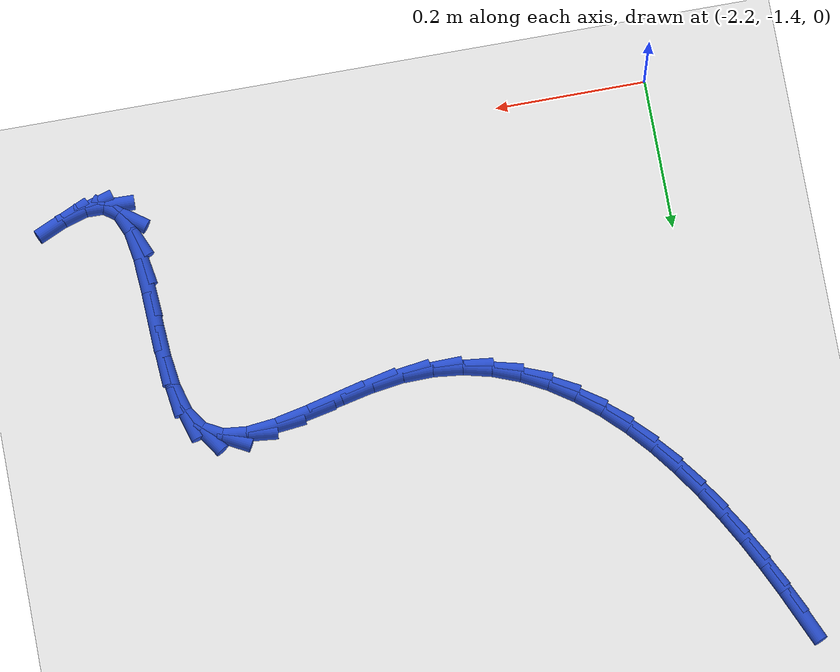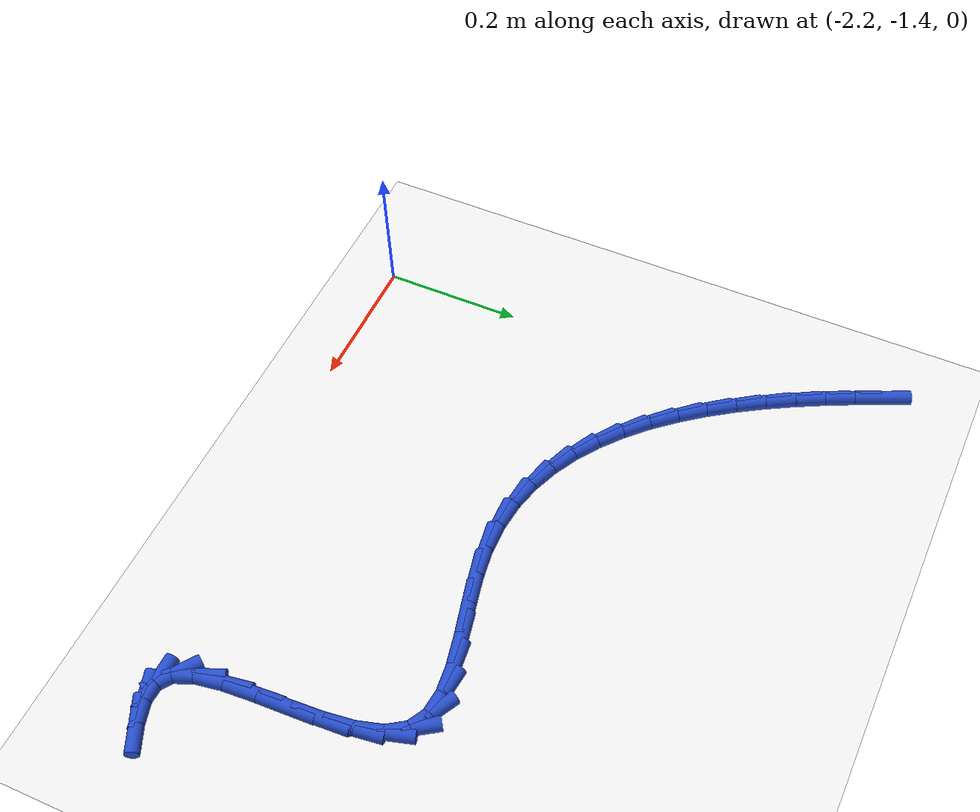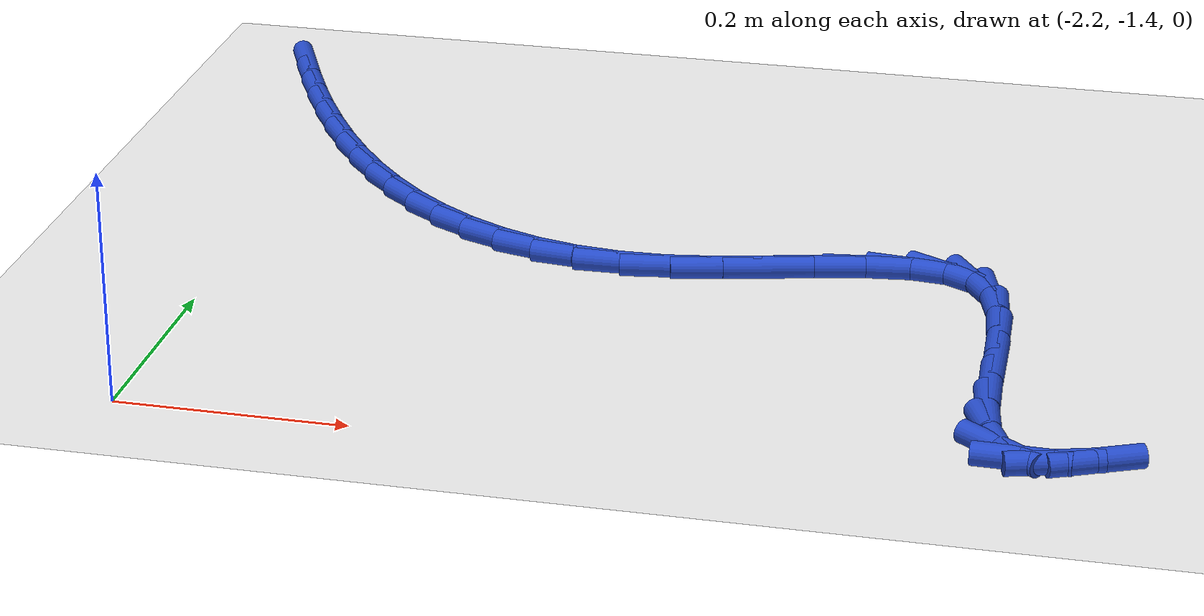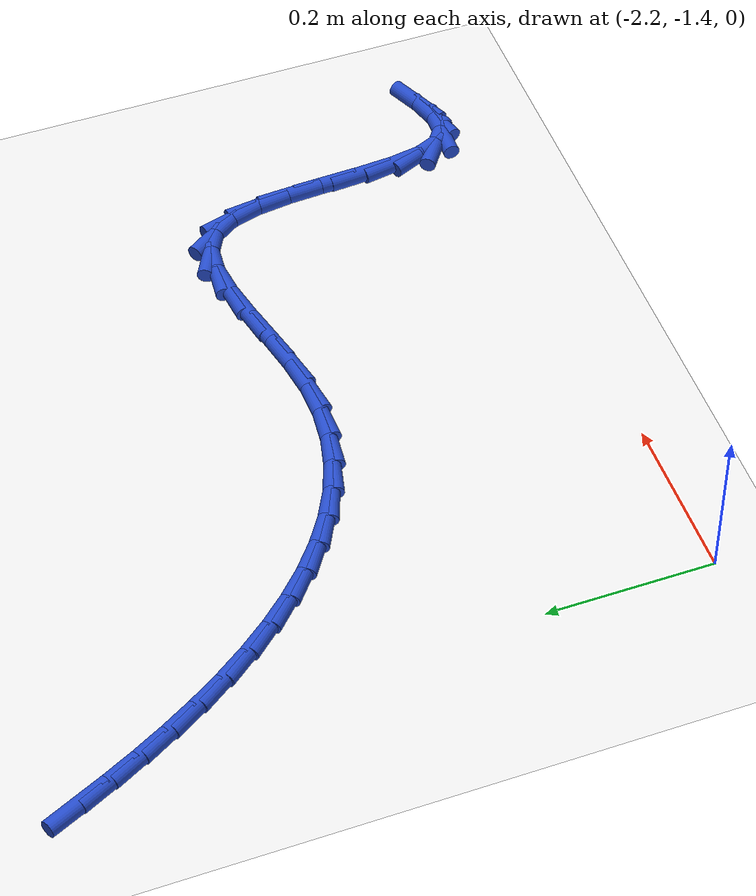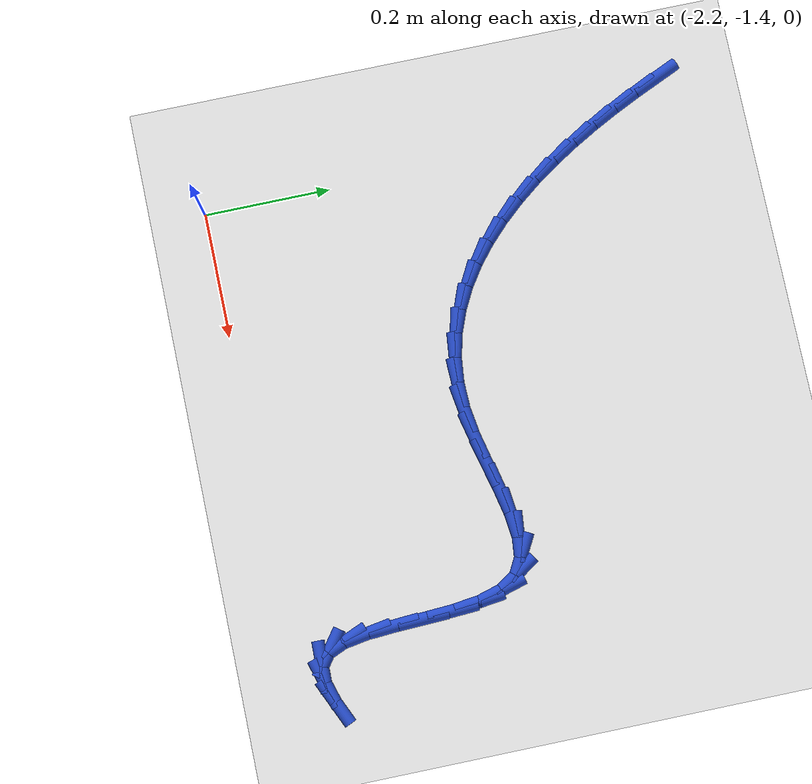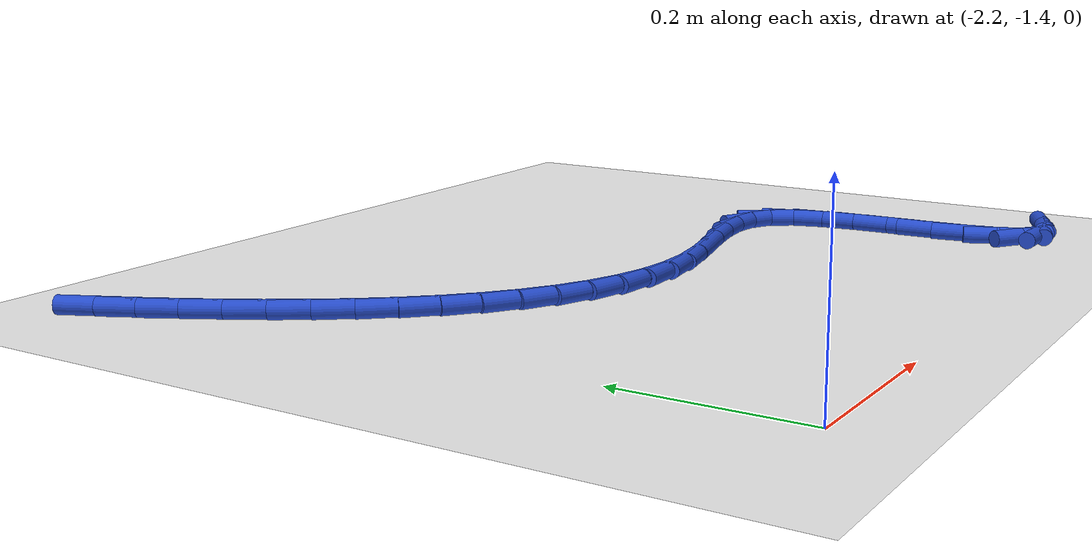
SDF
<sdf version="1.6">
 <world name="default">
  <model name="ground_plane">
   <static>1</static>
   <link name="link">
    <collision name="collision">
     <geometry><plane><normal>0 0 1</normal><size>100 100</size></plane></geometry>
     <surface><friction><ode><mu>100</mu><mu2>50</mu2></ode></friction></surface>
    </collision>
    <visual name="visual">
     <cast_shadows>0</cast_shadows>
     <geometry><plane><normal>0 0 1</normal><size>100 100</size></plane></geometry>
     <material>
      <script><uri>file://media/materials/scripts/gazebo.material</uri><name>Gazebo/WhiteGlow</name></script>
     </material>
    </visual>
   </link>
  </model>
  <model name="line">
   <link name="link_121">
    <pose>-2.269775248410697 -0.6574231573352426 0.01 0 1.57 -1.1499477192810716</pose>
    <collision name="collision">
     <geometry><cylinder><radius>0.01</radius><length>0.08</length></cylinder></geometry>
    </collision>
    <visual name="visual">
     <material>
      <script><name>Gazebo/Blue</name><uri>file://media/materials/scripts/gazebo.material</uri></script>
     </material>
     <geometry><cylinder><radius>0.01</radius><length>0.08</length></cylinder></geometry>
    </visual>
   </link>
   <link name="link_122">
    <pose>-2.252719852423586 -0.6955280445047892 0.01 0 1.57 -1.1230037014202798</pose>
    <collision name="collision">
     <geometry><cylinder><radius>0.01</radius><length>0.08</length></cylinder></geometry>
    </collision>
    <visual name="visual">
     <material>
      <script><name>Gazebo/Blue</name><uri>file://media/materials/scripts/gazebo.material</uri></script>
     </material>
     <geometry><cylinder><radius>0.01</radius><length>0.08</length></cylinder></geometry>
    </visual>
   </link>
   <link name="link_123">
    <pose>-2.234361599792862 -0.7337476891981547 0.01 0 1.57 -1.0921173443865106</pose>
    <collision name="collision">
     <geometry><cylinder><radius>0.01</radius><length>0.08</length></cylinder></geometry>
    </collision>
    <visual name="visual">
     <material>
      <script><name>Gazebo/Blue</name><uri>file://media/materials/scripts/gazebo.material</uri></script>
     </material>
     <geometry><cylinder><radius>0.01</radius><length>0.08</length></cylinder></geometry>
    </visual>
   </link>
   <link name="link_124">
    <pose>-2.214654082575549 -0.7717246912785204 0.01 0 1.57 -1.056301512064334</pose>
    <collision name="collision">
     <geometry><cylinder><radius>0.01</radius><length>0.08</length></cylinder></geometry>
    </collision>
    <visual name="visual">
     <material>
      <script><name>Gazebo/Blue</name><uri>file://media/materials/scripts/gazebo.material</uri></script>
     </material>
     <geometry><cylinder><radius>0.01</radius><length>0.08</length></cylinder></geometry>
    </visual>
   </link>
   <link name="link_125">
    <pose>-2.1935467084991265 -0.8090647148900444 0.01 0 1.57 -1.0148775684697988</pose>
    <collision name="collision">
     <geometry><cylinder><radius>0.01</radius><length>0.08</length></cylinder></geometry>
    </collision>
    <visual name="visual">
     <material>
      <script><name>Gazebo/Blue</name><uri>file://media/materials/scripts/gazebo.material</uri></script>
     </material>
     <geometry><cylinder><radius>0.01</radius><length>0.08</length></cylinder></geometry>
    </visual>
   </link>
   <link name="link_126">
    <pose>-2.17098888529107 -0.8453734241768808 0.01 0 1.57 -0.9670162511290974</pose>
    <collision name="collision">
     <geometry><cylinder><radius>0.01</radius><length>0.08</length></cylinder></geometry>
    </collision>
    <visual name="visual">
     <material>
      <script><name>Gazebo/Blue</name><uri>file://media/materials/scripts/gazebo.material</uri></script>
     </material>
     <geometry><cylinder><radius>0.01</radius><length>0.08</length></cylinder></geometry>
    </visual>
   </link>
   <link name="link_127">
    <pose>-2.1469300206788575 -0.8802564832831876 0.01 0 1.57 -0.911739198060527</pose>
    <collision name="collision">
     <geometry><cylinder><radius>0.01</radius><length>0.08</length></cylinder></geometry>
    </collision>
    <visual name="visual">
     <material>
      <script><name>Gazebo/Blue</name><uri>file://media/materials/scripts/gazebo.material</uri></script>
     </material>
     <geometry><cylinder><radius>0.01</radius><length>0.08</length></cylinder></geometry>
    </visual>
   </link>
   <link name="link_128">
    <pose>-2.121319522389966 -0.9133195563531211 0.01 0 1.57 -0.847940234381549</pose>
    <collision name="collision">
     <geometry><cylinder><radius>0.01</radius><length>0.08</length></cylinder></geometry>
    </collision>
    <visual name="visual">
     <material>
      <script><name>Gazebo/Blue</name><uri>file://media/materials/scripts/gazebo.material</uri></script>
     </material>
     <geometry><cylinder><radius>0.01</radius><length>0.08</length></cylinder></geometry>
    </visual>
   </link>
   <link name="link_129">
    <pose>-2.0941067981518735 -0.9441683075308381 0.01 0 1.57 -0.774446109135125</pose>
    <collision name="collision">
     <geometry><cylinder><radius>0.01</radius><length>0.08</length></cylinder></geometry>
    </collision>
    <visual name="visual">
     <material>
      <script><name>Gazebo/Blue</name><uri>file://media/materials/scripts/gazebo.material</uri></script>
     </material>
     <geometry><cylinder><radius>0.01</radius><length>0.08</length></cylinder></geometry>
    </visual>
   </link>
   <link name="link_130">
    <pose>-2.0652412556920563 -0.9724084009604951 0.01 0 1.57 -0.6901447380495611</pose>
    <collision name="collision">
     <geometry><cylinder><radius>0.01</radius><length>0.08</length></cylinder></geometry>
    </collision>
    <visual name="visual">
     <material>
      <script><name>Gazebo/Blue</name><uri>file://media/materials/scripts/gazebo.material</uri></script>
     </material>
     <geometry><cylinder><radius>0.01</radius><length>0.08</length></cylinder></geometry>
    </visual>
   </link>
   <link name="link_131">
    <pose>-2.034672302737992 -0.9976455007862484 0.01 0 1.57 -0.5942123320691319</pose>
    <collision name="collision">
     <geometry><cylinder><radius>0.01</radius><length>0.08</length></cylinder></geometry>
    </collision>
    <visual name="visual">
     <material>
      <script><name>Gazebo/Blue</name><uri>file://media/materials/scripts/gazebo.material</uri></script>
     </material>
     <geometry><cylinder><radius>0.01</radius><length>0.08</length></cylinder></geometry>
    </visual>
   </link>
   <link name="link_132">
    <pose>-2.002349347017158 -1.0194852711522555 0.01 0 1.57 -0.4864546177787133</pose>
    <collision name="collision">
     <geometry><cylinder><radius>0.01</radius><length>0.08</length></cylinder></geometry>
    </collision>
    <visual name="visual">
     <material>
      <script><name>Gazebo/Blue</name><uri>file://media/materials/scripts/gazebo.material</uri></script>
     </material>
     <geometry><cylinder><radius>0.01</radius><length>0.08</length></cylinder></geometry>
    </visual>
   </link>
   <link name="link_133">
    <pose>-1.9682217962570319 -1.037533376202672 0.01 0 1.57 -0.36772059909472926</pose>
    <collision name="collision">
     <geometry><cylinder><radius>0.01</radius><length>0.08</length></cylinder></geometry>
    </collision>
    <visual name="visual">
     <material>
      <script><name>Gazebo/Blue</name><uri>file://media/materials/scripts/gazebo.material</uri></script>
     </material>
     <geometry><cylinder><radius>0.01</radius><length>0.08</length></cylinder></geometry>
    </visual>
   </link>
   <link name="link_134">
    <pose>-1.932239058185091 -1.051395480081655 0.01 0 1.57 -0.24024436651452827</pose>
    <collision name="collision">
     <geometry><cylinder><radius>0.01</radius><length>0.08</length></cylinder></geometry>
    </collision>
    <visual name="visual">
     <material>
      <script><name>Gazebo/Blue</name><uri>file://media/materials/scripts/gazebo.material</uri></script>
     </material>
     <geometry><cylinder><radius>0.01</radius><length>0.08</length></cylinder></geometry>
    </visual>
   </link>
   <link name="link_135">
    <pose>-1.8943505405288126 -1.0606772469333607 0.01 0 1.57 -0.10767841837718344</pose>
    <collision name="collision">
     <geometry><cylinder><radius>0.01</radius><length>0.08</length></cylinder></geometry>
    </collision>
    <visual name="visual">
     <material>
      <script><name>Gazebo/Blue</name><uri>file://media/materials/scripts/gazebo.material</uri></script>
     </material>
     <geometry><cylinder><radius>0.01</radius><length>0.08</length></cylinder></geometry>
    </visual>
   </link>
   <link name="link_136">
    <pose>-1.8545056510156737 -1.064984340901946 0.01 0 1.57 0.02536774072356943</pose>
    <collision name="collision">
     <geometry><cylinder><radius>0.01</radius><length>0.08</length></cylinder></geometry>
    </collision>
    <visual name="visual">
     <material>
      <script><name>Gazebo/Blue</name><uri>file://media/materials/scripts/gazebo.material</uri></script>
     </material>
     <geometry><cylinder><radius>0.01</radius><length>0.08</length></cylinder></geometry>
    </visual>
   </link>
   <link name="link_137">
    <pose>-1.8126537973731522 -1.0639224261315676 0.01 0 1.57 0.14844895208678885</pose>
    <collision name="collision">
     <geometry><cylinder><radius>0.01</radius><length>0.08</length></cylinder></geometry>
    </collision>
    <visual name="visual">
     <material>
      <script><name>Gazebo/Blue</name><uri>file://media/materials/scripts/gazebo.material</uri></script>
     </material>
     <geometry><cylinder><radius>0.01</radius><length>0.08</length></cylinder></geometry>
    </visual>
   </link>
   <link name="link_138">
    <pose>-1.7688861546322254 -1.0573770140308107 0.01 0 1.57 0.2235371733079548</pose>
    <collision name="collision">
     <geometry><cylinder><radius>0.01</radius><length>0.08</length></cylinder></geometry>
    </collision>
    <visual name="visual">
     <material>
      <script><name>Gazebo/Blue</name><uri>file://media/materials/scripts/gazebo.material</uri></script>
     </material>
     <geometry><cylinder><radius>0.01</radius><length>0.08</length></cylinder></geometry>
    </visual>
   </link>
   <link name="link_139">
    <pose>-1.724312197627406 -1.0472437298169421 0.01 0 1.57 0.2447731494997812</pose>
    <collision name="collision">
     <geometry><cylinder><radius>0.01</radius><length>0.08</length></cylinder></geometry>
    </collision>
    <visual name="visual">
     <material>
      <script><name>Gazebo/Blue</name><uri>file://media/materials/scripts/gazebo.material</uri></script>
     </material>
     <geometry><cylinder><radius>0.01</radius><length>0.08</length></cylinder></geometry>
    </visual>
   </link>
   <link name="link_140">
    <pose>-1.6804865320384486 -1.0362968826229 0.01 0 1.57 0.2130515430869093</pose>
    <collision name="collision">
     <geometry><cylinder><radius>0.01</radius><length>0.08</length></cylinder></geometry>
    </collision>
    <visual name="visual">
     <material>
      <script><name>Gazebo/Blue</name><uri>file://media/materials/scripts/gazebo.material</uri></script>
     </material>
     <geometry><cylinder><radius>0.01</radius><length>0.08</length></cylinder></geometry>
    </visual>
   </link>
   <link name="link_141">
    <pose>-1.6389656326230773 -1.027314471123172 0.01 0 1.57 0.1121145900559433</pose>
    <collision name="collision">
     <geometry><cylinder><radius>0.01</radius><length>0.08</length></cylinder></geometry>
    </collision>
    <visual name="visual">
     <material>
      <script><name>Gazebo/Blue</name><uri>file://media/materials/scripts/gazebo.material</uri></script>
     </material>
     <geometry><cylinder><radius>0.01</radius><length>0.08</length></cylinder></geometry>
    </visual>
   </link>
   <link name="link_142">
    <pose>-1.6013059741390183 -1.0230744939922474 0.01 0 1.57 -0.10139605798595969</pose>
    <collision name="collision">
     <geometry><cylinder><radius>0.01</radius><length>0.08</length></cylinder></geometry>
    </collision>
    <visual name="visual">
     <material>
      <script><name>Gazebo/Blue</name><uri>file://media/materials/scripts/gazebo.material</uri></script>
     </material>
     <geometry><cylinder><radius>0.01</radius><length>0.08</length></cylinder></geometry>
    </visual>
   </link>
   <link name="link_143">
    <pose>-1.5690640313439954 -1.0263549499046138 0.01 0 1.57 -0.49311799229455683</pose>
    <collision name="collision">
     <geometry><cylinder><radius>0.01</radius><length>0.08</length></cylinder></geometry>
    </collision>
    <visual name="visual">
     <material>
      <script><name>Gazebo/Blue</name><uri>file://media/materials/scripts/gazebo.material</uri></script>
     </material>
     <geometry><cylinder><radius>0.01</radius><length>0.08</length></cylinder></geometry>
    </visual>
   </link>
   <link name="link_144">
    <pose>-1.5437962789957331 -1.0399338375347595 0.01 0 1.57 -0.9851733268816566</pose>
    <collision name="collision">
     <geometry><cylinder><radius>0.01</radius><length>0.08</length></cylinder></geometry>
    </collision>
    <visual name="visual">
     <material>
      <script><name>Gazebo/Blue</name><uri>file://media/materials/scripts/gazebo.material</uri></script>
     </material>
     <geometry><cylinder><radius>0.01</radius><length>0.08</length></cylinder></geometry>
    </visual>
   </link>
   <link name="link_145">
    <pose>-1.5266214218311365 -1.065829424735915 0.01 0 1.57 -1.2931904870136164</pose>
    <collision name="collision">
     <geometry><cylinder><radius>0.01</radius><length>0.08</length></cylinder></geometry>
    </collision>
    <visual name="visual">
     <material>
      <script><name>Gazebo/Blue</name><uri>file://media/materials/scripts/gazebo.material</uri></script>
     </material>
     <geometry><cylinder><radius>0.01</radius><length>0.08</length></cylinder></geometry>
    </visual>
   </link>
   <link name="link_146">
    <pose>-1.5163156407709641 -1.1019946312149853 0.01 0 1.57 -1.4450319831472833</pose>
    <collision name="collision">
     <geometry><cylinder><radius>0.01</radius><length>0.08</length></cylinder></geometry>
    </collision>
    <visual name="visual">
     <material>
      <script><name>Gazebo/Blue</name><uri>file://media/materials/scripts/gazebo.material</uri></script>
     </material>
     <geometry><cylinder><radius>0.01</radius><length>0.08</length></cylinder></geometry>
    </visual>
   </link>
   <link name="link_147">
    <pose>-1.510874833200879 -1.1450282285583127 0.01 0 1.57 -1.5153590184065902</pose>
    <collision name="collision">
     <geometry><cylinder><radius>0.01</radius><length>0.08</length></cylinder></geometry>
    </collision>
    <visual name="visual">
     <material>
      <script><name>Gazebo/Blue</name><uri>file://media/materials/scripts/gazebo.material</uri></script>
     </material>
     <geometry><cylinder><radius>0.01</radius><length>0.08</length></cylinder></geometry>
    </visual>
   </link>
   <link name="link_148">
    <pose>-1.5082943634663477 -1.1915280632841745 0.01 0 1.57 -1.5337723939973817</pose>
    <collision name="collision">
     <geometry><cylinder><radius>0.01</radius><length>0.08</length></cylinder></geometry>
    </collision>
    <visual name="visual">
     <material>
      <script><name>Gazebo/Blue</name><uri>file://media/materials/scripts/gazebo.material</uri></script>
     </material>
     <geometry><cylinder><radius>0.01</radius><length>0.08</length></cylinder></geometry>
    </visual>
   </link>
   <link name="link_149">
    <pose>-1.5065695959128367 -1.2380919819108478 0.01 0 1.57 -1.504412933116376</pose>
    <collision name="collision">
     <geometry><cylinder><radius>0.01</radius><length>0.08</length></cylinder></geometry>
    </collision>
    <visual name="visual">
     <material>
      <script><name>Gazebo/Blue</name><uri>file://media/materials/scripts/gazebo.material</uri></script>
     </material>
     <geometry><cylinder><radius>0.01</radius><length>0.08</length></cylinder></geometry>
    </visual>
   </link>
   <link name="link_150">
    <pose>-1.5036958948858126 -1.2813178309566102 0.01 0 1.57 -1.4070791571776708</pose>
    <collision name="collision">
     <geometry><cylinder><radius>0.01</radius><length>0.08</length></cylinder></geometry>
    </collision>
    <visual name="visual">
     <material>
      <script><name>Gazebo/Blue</name><uri>file://media/materials/scripts/gazebo.material</uri></script>
     </material>
     <geometry><cylinder><radius>0.01</radius><length>0.08</length></cylinder></geometry>
    </visual>
   </link>
   <link name="link_151">
    <pose>-1.4976686247307418 -1.3178034569397388 0.01 0 1.57 -1.1692603112453317</pose>
    <collision name="collision">
     <geometry><cylinder><radius>0.01</radius><length>0.08</length></cylinder></geometry>
    </collision>
    <visual name="visual">
     <material>
      <script><name>Gazebo/Blue</name><uri>file://media/materials/scripts/gazebo.material</uri></script>
     </material>
     <geometry><cylinder><radius>0.01</radius><length>0.08</length></cylinder></geometry>
    </visual>
   </link>
   <link name="link_152">
    <pose>-1.4864831497930915 -1.3441467063785104 0.01 0 1.57 -0.6250991027323191</pose>
    <collision name="collision">
     <geometry><cylinder><radius>0.01</radius><length>0.08</length></cylinder></geometry>
    </collision>
    <visual name="visual">
     <material>
      <script><name>Gazebo/Blue</name><uri>file://media/materials/scripts/gazebo.material</uri></script>
     </material>
     <geometry><cylinder><radius>0.01</radius><length>0.08</length></cylinder></geometry>
    </visual>
   </link>
   <link name="link_153">
    <pose>-1.4682960539252103 -1.357271153877062 0.01 0 1.57 -0.01858454891380515</pose>
    <collision name="collision">
     <geometry><cylinder><radius>0.01</radius><length>0.08</length></cylinder></geometry>
    </collision>
    <visual name="visual">
     <material>
      <script><name>Gazebo/Blue</name><uri>file://media/materials/scripts/gazebo.material</uri></script>
     </material>
     <geometry><cylinder><radius>0.01</radius><length>0.08</length></cylinder></geometry>
    </visual>
   </link>
   <link name="link_154">
    <pose>-1.4430654116568393 -1.3577401079736438 0.01 0 1.57 0.2910648182735514</pose>
    <collision name="collision">
     <geometry><cylinder><radius>0.01</radius><length>0.08</length></cylinder></geometry>
    </collision>
    <visual name="visual">
     <material>
      <script><name>Gazebo/Blue</name><uri>file://media/materials/scripts/gazebo.material</uri></script>
     </material>
     <geometry><cylinder><radius>0.01</radius><length>0.08</length></cylinder></geometry>
    </visual>
   </link>
   <link name="link_155">
    <pose>-1.4118779411898892 -1.348397190240966 0.01 0 1.57 0.42419141635563423</pose>
    <collision name="collision">
     <geometry><cylinder><radius>0.01</radius><length>0.08</length></cylinder></geometry>
    </collision>
    <visual name="visual">
     <material>
      <script><name>Gazebo/Blue</name><uri>file://media/materials/scripts/gazebo.material</uri></script>
     </material>
     <geometry><cylinder><radius>0.01</radius><length>0.08</length></cylinder></geometry>
    </visual>
   </link>
  </model>
 </world>
</sdf>
